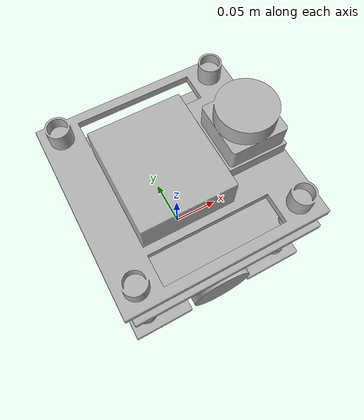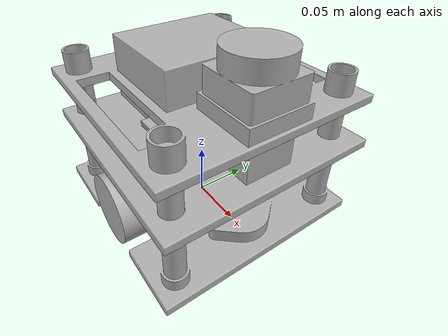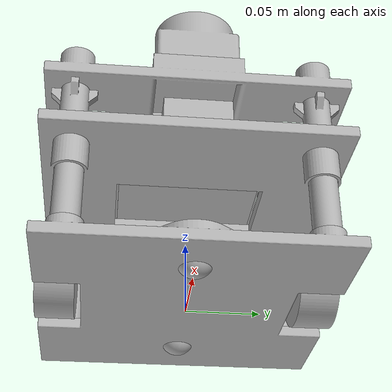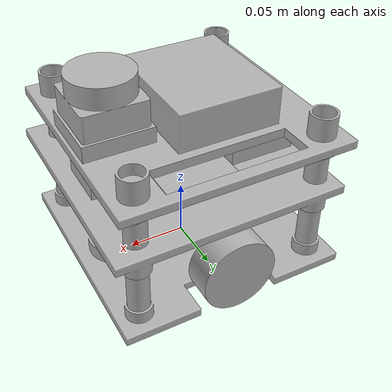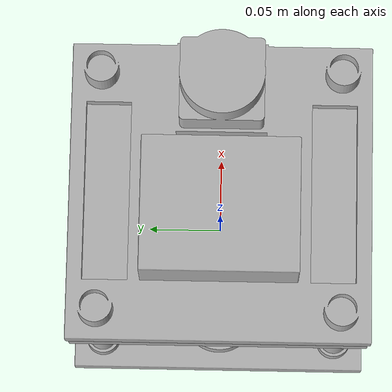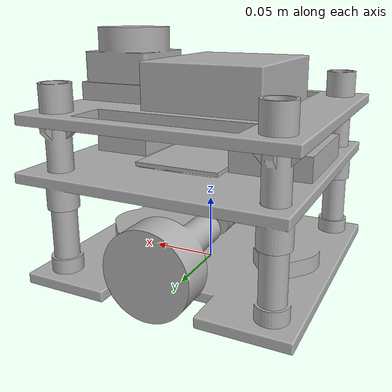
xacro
<?xml version="1.0" ?>
<robot name="aircore" xmlns:xacro="http://www.ros.org/wiki/xacro">

<xacro:include filename="$(find aircore_description)/urdf/materials.xacro" />
<xacro:include filename="$(find aircore_description)/urdf/aircore.trans" />
<xacro:include filename="$(find aircore_description)/urdf/aircore.gazebo" />

<link name="base_link">
  <inertial>
    <origin xyz="0.0 0.0 0.0" rpy="0 0 0"/>
    <mass value="0.439225"/>
    <inertia ixx="0.0011138883819159162" iyy="0.0016599215740339746" izz="0.0027503826039219545" ixy="2.8249298632144927e-14" iyz="9.053609013843502e-08" ixz="8.451472135959193e-14"/>
  </inertial>
  <visual>
    <origin xyz="0.0 0.0 0.0" rpy="0 0 0"/>
    <geometry>
      <mesh filename="package://aircore_description/meshes/base_link.stl" scale="0.001 0.001 0.001"/>
    </geometry>
    <material name="silver"/>
  </visual>
  <collision>
    <origin xyz="0.0 0.0 0.0" rpy="0 0 0"/>
    <geometry>
      <mesh filename="package://aircore_description/meshes/base_link.stl" scale="0.001 0.001 0.001"/>
    </geometry>
  </collision>
</link>

<link name="floor_2">
  <inertial>
    <origin xyz="0.0 0.0 0.0" rpy="0 0 0"/>
    <mass value="0.34289"/>
    <inertia ixx="0.0013144445405535135" iyy="0.0013463373808168917" izz="0.002650699609140111" ixy="1.5330280903726815e-14" iyz="-2.161860466003418e-18" ixz="-1.1136072907003861e-06"/>
  </inertial>
  <visual>
    <origin xyz="-0.00491162 0.0 -0.07933877" rpy="0 0 0"/>
    <geometry>
      <mesh filename="package://aircore_description/meshes/floor_2.stl" scale="0.001 0.001 0.001"/>
    </geometry>
    <material name="silver"/>
  </visual>
  <collision>
    <origin xyz="-0.00491162 0.0 -0.07933877" rpy="0 0 0"/>
    <geometry>
      <mesh filename="package://aircore_description/meshes/floor_2.stl" scale="0.001 0.001 0.001"/>
    </geometry>
  </collision>
</link>

<joint name="floor_2_joint" type="fixed">
  <origin xyz="0.00491162 -0.0 0.07933877" rpy="0 0 0"/>
  <parent link="base_link"/>
  <child link="floor_2"/>
</joint>

<link name="floor_3">
  <inertial>
    <origin xyz="0.0 0.0 0.0" rpy="0 0 0"/>
    <mass value="0.293633"/>
    <inertia ixx="0.0009363160280724659" iyy="0.0012427366259646676" izz="0.0021596955477074225" ixy="-4.404300590613591e-06" iyz="-6.231179076946574e-07" ixz="-2.7979649296653862e-05"/>
  </inertial>
  <visual>
    <origin xyz="-0.00122918 -0.00019042 -0.12385555" rpy="0 0 0"/>
    <geometry>
      <mesh filename="package://aircore_description/meshes/floor_3.stl" scale="0.001 0.001 0.001"/>
    </geometry>
    <material name="silver"/>
  </visual>
  <collision>
    <origin xyz="-0.00122918 -0.00019042 -0.12385555" rpy="0 0 0"/>
    <geometry>
      <mesh filename="package://aircore_description/meshes/floor_3.stl" scale="0.001 0.001 0.001"/>
    </geometry>
  </collision>
</link>

<joint name="floor_3_joint" type="fixed">
  <origin xyz="0.00122918 0.00019042 0.12385555" rpy="0 0 0"/>
  <parent link="base_link"/>
  <child link="floor_3"/>
</joint>

<link name="left_wheel">
  <inertial>
    <origin xyz="0.0 0.0 0.0" rpy="0 0 0"/>
    <mass value="0.138598"/>
    <inertia ixx="0.00010788068295675424" iyy="5.8722558095222066e-05" izz="0.00010788055352398356" ixy="1.7105327287514536e-09" iyz="1.3410444249981083e-13" ixz="-8.017404192709363e-14"/>
  </inertial>
  <visual>
    <origin xyz="-3.1e-07 -0.07526258 -0.027" rpy="0 0 0"/>
    <geometry>
      <mesh filename="package://aircore_description/meshes/left_wheel.stl" scale="0.001 0.001 0.001"/>
    </geometry>
    <material name="silver"/>
  </visual>
  <collision>
    <origin xyz="0 0 0" rpy="1.5707963 0 0"/>
    <geometry>
      <cylinder radius="0.0325" length="0.02"/>
    </geometry>
  </collision>
</link>

<joint name="left_wheel_joint" type="continuous">
  <origin xyz="3.1e-07 0.07526258 0.027" rpy="0 0 0"/>
  <parent link="base_link"/>
  <child link="left_wheel"/>
  <axis xyz="0.0 1.0 0.0"/>
</joint>

<link name="right_wheel">
  <inertial>
    <origin xyz="0.0 0.0 0.0" rpy="0 0 0"/>
    <mass value="0.138616"/>
    <inertia ixx="0.00010789311783370145" iyy="5.87413260378758e-05" izz="0.00010789298840277623" ixy="-1.710727078253432e-09" iyz="-1.35034247245203e-13" ixz="5.515708205821283e-15"/>
  </inertial>
  <visual>
    <origin xyz="-3.1e-07 0.07526408 -0.027" rpy="0 0 0"/>
    <geometry>
      <mesh filename="package://aircore_description/meshes/right_wheel.stl" scale="0.001 0.001 0.001"/>
    </geometry>
    <material name="silver"/>
  </visual>
  <!-- left_wheel과 동일한 이유로 충돌체를 원기둥으로 근사, origin도 동일하게
       (0,0,0)으로 관절 원점에 중심을 맞춤. length=20mm인 이유는 left_wheel
       주석 참고(축/허브 vs 타이어 반지름 분석, README_NAV2.md 15-10절) -->
  <collision>
    <origin xyz="0 0 0" rpy="1.5707963 0 0"/>
    <geometry>
      <cylinder radius="0.0325" length="0.02"/>
    </geometry>
  </collision>
</link>

<joint name="right_wheel_joint" type="continuous">
  <origin xyz="3.1e-07 -0.07526408 0.027" rpy="0 0 0"/>
  <parent link="base_link"/>
  <child link="right_wheel"/>
  <axis xyz="0.0 1.0 0.0"/>
</joint>

<link name="left_support_wheel">
  <inertial>
    <origin xyz="0.0 0.0 0.0" rpy="0 0 0"/>
    <mass value="0.010127"/>
    <inertia ixx="6.322245674430599e-07" iyy="6.322318397108807e-07" izz="6.319996952651373e-07" ixy="2.90401658276096e-23" iyz="3.4712978958850727e-19" ixz="-1.5146842997637577e-20"/>
  </inertial>
  <visual>
    <origin xyz="0.06299994 -0.0 -0.007" rpy="0 0 0"/>
    <geometry>
      <mesh filename="package://aircore_description/meshes/left_support_wheel.stl" scale="0.001 0.001 0.001"/>
    </geometry>
    <material name="silver"/>
  </visual>
  <collision>
    <origin xyz="0 0 0" rpy="0 0 0"/>
    <geometry>
      <sphere radius="0.0125"/>
    </geometry>
  </collision>
</link>

<joint name="left_support_wheel_joint" type="fixed">
  <origin xyz="-0.06299994 0.0 0.007" rpy="0 0 0"/>
  <parent link="base_link"/>
  <child link="left_support_wheel"/>
</joint>

<link name="right_support_wheel">
  <inertial>
    <origin xyz="0.0 0.0 0.0" rpy="0 0 0"/>
    <mass value="0.010127"/>
    <inertia ixx="6.322245611632108e-07" iyy="6.322318164671238e-07" izz="6.319996692839877e-07" ixy="-1.240550773218274e-23" iyz="-1.9337618050485616e-18" ixz="-1.5343075574492104e-20"/>
  </inertial>
  <visual>
    <origin xyz="-0.06300006 -0.0 -0.007" rpy="0 0 0"/>
    <geometry>
      <mesh filename="package://aircore_description/meshes/right_support_wheel.stl" scale="0.001 0.001 0.001"/>
    </geometry>
    <material name="silver"/>
  </visual>
  <!-- left_support_wheel과 동일한 이유로 볼캐스터 충돌체를 구(sphere)로
       근사, origin도 동일하게 (0,0,0)으로 관절 원점에 중심을 맞춤 -->
  <collision>
    <origin xyz="0 0 0" rpy="0 0 0"/>
    <geometry>
      <sphere radius="0.0125"/>
    </geometry>
  </collision>
</link>

<joint name="right_support_wheel_joint" type="fixed">
  <origin xyz="0.06300006 0.0 0.007" rpy="0 0 0"/>
  <parent link="base_link"/>
  <child link="right_support_wheel"/>
</joint>

<link name="battery">
  <inertial>
    <origin xyz="0.0 0.0 0.0" rpy="0 0 0"/>
    <mass value="0.3"/>
    <inertia ixx="0.00014872499999999997" iyy="9.809999999999999e-05" izz="0.00023062499999999998" ixy="0.0" iyz="0.0" ixz="0.0"/>
  </inertial>
  <visual>
    <origin xyz="0.05947 0.00304435 -0.093" rpy="0 0 0"/>
    <geometry>
      <mesh filename="package://aircore_description/meshes/battery.stl" scale="0.001 0.001 0.001"/>
    </geometry>
    <material name="silver"/>
  </visual>
  <collision>
    <origin xyz="0.05947 0.00304435 -0.093" rpy="0 0 0"/>
    <geometry>
      <mesh filename="package://aircore_description/meshes/battery.stl" scale="0.001 0.001 0.001"/>
    </geometry>
  </collision>
</link>

<joint name="battery_joint" type="fixed">
  <origin xyz="-0.05947 -0.00304435 0.093" rpy="0 0 0"/>
  <parent link="base_link"/>
  <child link="battery"/>
</joint>

<link name="driver">
  <inertial>
    <origin xyz="0.0 0.0 0.0" rpy="0 0 0"/>
    <mass value="0.05"/>
    <inertia ixx="1.1041666666666666e-05" iyy="1.1041666666666666e-05" izz="1.6875e-05" ixy="0.0" iyz="0.0" ixz="0.0"/>
  </inertial>
  <visual>
    <origin xyz="-0.06800061 -0.0 -0.0965" rpy="0 0 0"/>
    <geometry>
      <mesh filename="package://aircore_description/meshes/driver.stl" scale="0.001 0.001 0.001"/>
    </geometry>
    <material name="silver"/>
  </visual>
  <collision>
    <origin xyz="-0.06800061 -0.0 -0.0965" rpy="0 0 0"/>
    <geometry>
      <mesh filename="package://aircore_description/meshes/driver.stl" scale="0.001 0.001 0.001"/>
    </geometry>
  </collision>
</link>

<joint name="driver_joint" type="fixed">
  <origin xyz="0.06800061 0.0 0.0965" rpy="0 0 0"/>
  <parent link="base_link"/>
  <child link="driver"/>
</joint>

<link name="stmf407">
  <inertial>
    <origin xyz="0.0 0.0 0.0" rpy="0 0 0"/>
    <mass value="0.03"/>
    <inertia ixx="2.3545000000000002e-05" iyy="1.0912500000000003e-05" izz="3.44125e-05" ixy="0.0" iyz="0.0" ixz="0.0"/>
  </inertial>
  <visual>
    <origin xyz="-0.005 -0.0 -0.0855" rpy="0 0 0"/>
    <geometry>
      <mesh filename="package://aircore_description/meshes/stmf407.stl" scale="0.001 0.001 0.001"/>
    </geometry>
    <material name="silver"/>
  </visual>
  <collision>
    <origin xyz="-0.005 -0.0 -0.0855" rpy="0 0 0"/>
    <geometry>
      <mesh filename="package://aircore_description/meshes/stmf407.stl" scale="0.001 0.001 0.001"/>
    </geometry>
  </collision>
</link>

<joint name="stmf407_joint" type="fixed">
  <origin xyz="0.005 0.0 0.0855" rpy="0 0 0"/>
  <parent link="base_link"/>
  <child link="stmf407"/>
</joint>

<link name="jetson_nano">
  <inertial>
    <origin xyz="0.0 0.0 0.0" rpy="0 0 0"/>
    <mass value="0.24"/>
    <inertia ixx="0.0002437" iyy="0.00018938" izz="0.00037831999999999997" ixy="0.0" iyz="0.0" ixz="0.0"/>
  </inertial>
  <visual>
    <origin xyz="0.015 0.0 -0.14149546" rpy="0 0 0"/>
    <geometry>
      <mesh filename="package://aircore_description/meshes/jetson_nano.stl" scale="0.001 0.001 0.001"/>
    </geometry>
    <material name="silver"/>
  </visual>
  <collision>
    <origin xyz="0.015 0.0 -0.14149546" rpy="0 0 0"/>
    <geometry>
      <mesh filename="package://aircore_description/meshes/jetson_nano.stl" scale="0.001 0.001 0.001"/>
    </geometry>
  </collision>
</link>

<joint name="jetson_nano_joint" type="fixed">
  <origin xyz="-0.015 -0.0 0.14149546" rpy="0 0 0"/>
  <parent link="base_link"/>
  <child link="jetson_nano"/>
</joint>

<link name="lidar">
  <inertial>
    <origin xyz="0.0 0.0 0.0" rpy="0 0 0"/>
    <mass value="0.11"/>
    <inertia ixx="4.397295833333334e-05" iyy="4.397295833333334e-05" izz="5.667493333333334e-05" ixy="0.0" iyz="0.0" ixz="0.0"/>
  </inertial>
  <visual>
    <origin xyz="-0.06719964 0.0 -0.15945335" rpy="0 0 0"/>
    <geometry>
      <mesh filename="package://aircore_description/meshes/lidar.stl" scale="0.001 0.001 0.001"/>
    </geometry>
    <material name="silver"/>
  </visual>
  <collision>
    <origin xyz="-0.06719964 0.0 -0.15945335" rpy="0 0 0"/>
    <geometry>
      <mesh filename="package://aircore_description/meshes/lidar.stl" scale="0.001 0.001 0.001"/>
    </geometry>
  </collision>
</link>

<joint name="lidar_joint" type="fixed">
  <origin xyz="0.06719964 -0.0 0.15945335" rpy="0 0 0"/>
  <parent link="base_link"/>
  <child link="lidar"/>
</joint>

<link name="support_1_1">
  <inertial>
    <origin xyz="0.0 0.0 0.0" rpy="0 0 0"/>
    <mass value="0.01997"/>
    <inertia ixx="6.417418198668907e-06" iyy="6.417418129366872e-06" izz="8.530732737648661e-07" ixy="-2.706656232476234e-23" iyz="-1.8044374883174896e-23" ixz="4.511093720793724e-24"/>
  </inertial>
  <visual>
    <origin xyz="0.08 -0.08 -0.038" rpy="0 0 0"/>
    <geometry>
      <mesh filename="package://aircore_description/meshes/support_1_1.stl" scale="0.001 0.001 0.001"/>
    </geometry>
    <material name="silver"/>
  </visual>
  <collision>
    <origin xyz="0.08 -0.08 -0.038" rpy="0 0 0"/>
    <geometry>
      <mesh filename="package://aircore_description/meshes/support_1_1.stl" scale="0.001 0.001 0.001"/>
    </geometry>
  </collision>
</link>

<joint name="support_1_1_joint" type="fixed">
  <origin xyz="-0.08 0.08 0.038" rpy="0 0 0"/>
  <parent link="base_link"/>
  <child link="support_1_1"/>
</joint>

<link name="support_2_1">
  <inertial>
    <origin xyz="0.0 0.0 0.0" rpy="0 0 0"/>
    <mass value="0.020989"/>
    <inertia ixx="6.658761187281973e-06" iyy="6.657193425108008e-06" izz="9.966525112693481e-07" ixy="-4.510125281198925e-12" iyz="-4.451537368229161e-09" ixz="-5.7336454030917375e-11"/>
  </inertial>
  <visual>
    <origin xyz="0.07999979 -0.08001719 -0.10163285" rpy="0 0 0"/>
    <geometry>
      <mesh filename="package://aircore_description/meshes/support_2_1.stl" scale="0.001 0.001 0.001"/>
    </geometry>
    <material name="silver"/>
  </visual>
  <collision>
    <origin xyz="0.07999979 -0.08001719 -0.10163285" rpy="0 0 0"/>
    <geometry>
      <mesh filename="package://aircore_description/meshes/support_2_1.stl" scale="0.001 0.001 0.001"/>
    </geometry>
  </collision>
</link>

<joint name="support_2_1_joint" type="fixed">
  <origin xyz="-0.07999979 0.08001719 0.10163285" rpy="0 0 0"/>
  <parent link="base_link"/>
  <child link="support_2_1"/>
</joint>

<link name="support_1_2">
  <inertial>
    <origin xyz="0.0 0.0 0.0" rpy="0 0 0"/>
    <mass value="0.01997"/>
    <inertia ixx="6.417418198668907e-06" iyy="6.417418129366872e-06" izz="8.530732737648661e-07" ixy="2.255546860396862e-23" iyz="-1.8044374883174896e-23" ixz="4.511093720793724e-24"/>
  </inertial>
  <visual>
    <origin xyz="-0.08 -0.08 -0.038" rpy="0 0 0"/>
    <geometry>
      <mesh filename="package://aircore_description/meshes/support_1_2.stl" scale="0.001 0.001 0.001"/>
    </geometry>
    <material name="silver"/>
  </visual>
  <collision>
    <origin xyz="-0.08 -0.08 -0.038" rpy="0 0 0"/>
    <geometry>
      <mesh filename="package://aircore_description/meshes/support_1_2.stl" scale="0.001 0.001 0.001"/>
    </geometry>
  </collision>
</link>

<joint name="support_1_2_joint" type="fixed">
  <origin xyz="0.08 0.08 0.038" rpy="0 0 0"/>
  <parent link="base_link"/>
  <child link="support_1_2"/>
</joint>

<link name="support_2_2">
  <inertial>
    <origin xyz="0.0 0.0 0.0" rpy="0 0 0"/>
    <mass value="0.020989"/>
    <inertia ixx="6.658761187281973e-06" iyy="6.657193425108008e-06" izz="9.966525112693481e-07" ixy="4.510125281197797e-12" iyz="-4.451537368229233e-09" ixz="5.733645403089933e-11"/>
  </inertial>
  <visual>
    <origin xyz="-0.07999979 -0.08001719 -0.10163285" rpy="0 0 0"/>
    <geometry>
      <mesh filename="package://aircore_description/meshes/support_2_2.stl" scale="0.001 0.001 0.001"/>
    </geometry>
    <material name="silver"/>
  </visual>
  <collision>
    <origin xyz="-0.07999979 -0.08001719 -0.10163285" rpy="0 0 0"/>
    <geometry>
      <mesh filename="package://aircore_description/meshes/support_2_2.stl" scale="0.001 0.001 0.001"/>
    </geometry>
  </collision>
</link>

<joint name="support_2_2_joint" type="fixed">
  <origin xyz="0.07999979 0.08001719 0.10163285" rpy="0 0 0"/>
  <parent link="base_link"/>
  <child link="support_2_2"/>
</joint>

<link name="support_1_3">
  <inertial>
    <origin xyz="0.0 0.0 0.0" rpy="0 0 0"/>
    <mass value="0.01997"/>
    <inertia ixx="6.417418198668907e-06" iyy="6.417418129366872e-06" izz="8.530732737648661e-07" ixy="2.255546860396862e-23" iyz="1.8044374883174896e-23" ixz="-4.511093720793724e-24"/>
  </inertial>
  <visual>
    <origin xyz="0.08 0.08 -0.038" rpy="0 0 0"/>
    <geometry>
      <mesh filename="package://aircore_description/meshes/support_1_3.stl" scale="0.001 0.001 0.001"/>
    </geometry>
    <material name="silver"/>
  </visual>
  <collision>
    <origin xyz="0.08 0.08 -0.038" rpy="0 0 0"/>
    <geometry>
      <mesh filename="package://aircore_description/meshes/support_1_3.stl" scale="0.001 0.001 0.001"/>
    </geometry>
  </collision>
</link>

<joint name="support_1_3_joint" type="fixed">
  <origin xyz="-0.08 -0.08 0.038" rpy="0 0 0"/>
  <parent link="base_link"/>
  <child link="support_1_3"/>
</joint>

<link name="support_2_3">
  <inertial>
    <origin xyz="0.0 0.0 0.0" rpy="0 0 0"/>
    <mass value="0.020989"/>
    <inertia ixx="6.658761187281973e-06" iyy="6.657193425108008e-06" izz="9.966525112693481e-07" ixy="4.510125281197797e-12" iyz="4.451537368229233e-09" ixz="-5.733645403089933e-11"/>
  </inertial>
  <visual>
    <origin xyz="0.07999979 0.08001719 -0.10163285" rpy="0 0 0"/>
    <geometry>
      <mesh filename="package://aircore_description/meshes/support_2_3.stl" scale="0.001 0.001 0.001"/>
    </geometry>
    <material name="silver"/>
  </visual>
  <collision>
    <origin xyz="0.07999979 0.08001719 -0.10163285" rpy="0 0 0"/>
    <geometry>
      <mesh filename="package://aircore_description/meshes/support_2_3.stl" scale="0.001 0.001 0.001"/>
    </geometry>
  </collision>
</link>

<joint name="support_2_3_joint" type="fixed">
  <origin xyz="-0.07999979 -0.08001719 0.10163285" rpy="0 0 0"/>
  <parent link="base_link"/>
  <child link="support_2_3"/>
</joint>

<link name="support_1_4">
  <inertial>
    <origin xyz="0.0 0.0 0.0" rpy="0 0 0"/>
    <mass value="0.01997"/>
    <inertia ixx="6.417418198668907e-06" iyy="6.417418129366872e-06" izz="8.530732737648661e-07" ixy="-2.706656232476234e-23" iyz="1.8044374883174896e-23" ixz="-4.511093720793724e-24"/>
  </inertial>
  <visual>
    <origin xyz="-0.08 0.08 -0.038" rpy="0 0 0"/>
    <geometry>
      <mesh filename="package://aircore_description/meshes/support_1_4.stl" scale="0.001 0.001 0.001"/>
    </geometry>
    <material name="silver"/>
  </visual>
  <collision>
    <origin xyz="-0.08 0.08 -0.038" rpy="0 0 0"/>
    <geometry>
      <mesh filename="package://aircore_description/meshes/support_1_4.stl" scale="0.001 0.001 0.001"/>
    </geometry>
  </collision>
</link>

<joint name="support_1_4_joint" type="fixed">
  <origin xyz="0.08 -0.08 0.038" rpy="0 0 0"/>
  <parent link="base_link"/>
  <child link="support_1_4"/>
</joint>

<link name="support_2_4">
  <inertial>
    <origin xyz="0.0 0.0 0.0" rpy="0 0 0"/>
    <mass value="0.020989"/>
    <inertia ixx="6.658761187281973e-06" iyy="6.657193425108008e-06" izz="9.966525112693481e-07" ixy="-4.510125281198925e-12" iyz="4.451537368229161e-09" ixz="5.7336454030917375e-11"/>
  </inertial>
  <visual>
    <origin xyz="-0.07999979 0.08001719 -0.10163285" rpy="0 0 0"/>
    <geometry>
      <mesh filename="package://aircore_description/meshes/support_2_4.stl" scale="0.001 0.001 0.001"/>
    </geometry>
    <material name="silver"/>
  </visual>
  <collision>
    <origin xyz="-0.07999979 0.08001719 -0.10163285" rpy="0 0 0"/>
    <geometry>
      <mesh filename="package://aircore_description/meshes/support_2_4.stl" scale="0.001 0.001 0.001"/>
    </geometry>
  </collision>
</link>

<joint name="support_2_4_joint" type="fixed">
  <origin xyz="0.07999979 -0.08001719 0.10163285" rpy="0 0 0"/>
  <parent link="base_link"/>
  <child link="support_2_4"/>
</joint>

</robot>

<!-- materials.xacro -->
<robot name="aircore" xmlns:xacro="http://www.ros.org/wiki/xacro" >

<material name="silver">
  <color rgba="0.700 0.700 0.700 1.000"/>
</material>

</robot>

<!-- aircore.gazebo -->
<robot name="aircore" xmlns:xacro="http://www.ros.org/wiki/xacro" >

<xacro:property name="body_color" value="Gazebo/Silver" />

<gazebo reference="base_link">
  <material>${body_color}</material>
  <mu1>0.2</mu1><mu2>0.2</mu2><selfCollide>false</selfCollide><gravity>true</gravity>
</gazebo>

<gazebo reference="floor_2">
  <material>${body_color}</material>
  <mu1>0.2</mu1><mu2>0.2</mu2>
  <selfCollide>false</selfCollide>
</gazebo>

<gazebo reference="floor_3">
  <material>${body_color}</material>
  <mu1>0.2</mu1><mu2>0.2</mu2>
  <selfCollide>false</selfCollide>
</gazebo>

<gazebo reference="left_wheel">
  <material>${body_color}</material>
  <mu1>1.0</mu1><mu2>1.0</mu2>
  <selfCollide>false</selfCollide>
</gazebo>

<gazebo reference="right_wheel">
  <material>${body_color}</material>
  <mu1>1.0</mu1><mu2>1.0</mu2>
  <selfCollide>false</selfCollide>
</gazebo>

<gazebo reference="left_support_wheel">
  <material>${body_color}</material>
  <mu1>0.01</mu1><mu2>0.01</mu2>
  <selfCollide>false</selfCollide>
</gazebo>

<gazebo reference="right_support_wheel">
  <material>${body_color}</material>
  <mu1>0.01</mu1><mu2>0.01</mu2>
  <selfCollide>false</selfCollide>
</gazebo>

<gazebo reference="battery">
  <material>${body_color}</material>
  <mu1>0.2</mu1><mu2>0.2</mu2>
  <selfCollide>false</selfCollide>
</gazebo>

<gazebo reference="driver">
  <material>${body_color}</material>
  <mu1>0.2</mu1><mu2>0.2</mu2>
  <selfCollide>false</selfCollide>
</gazebo>

<gazebo reference="stmf407">
  <material>${body_color}</material>
  <mu1>0.2</mu1><mu2>0.2</mu2>
  <selfCollide>false</selfCollide>
</gazebo>

<gazebo reference="jetson_nano">
  <material>${body_color}</material>
  <mu1>0.2</mu1><mu2>0.2</mu2>
  <selfCollide>false</selfCollide>
</gazebo>

<gazebo reference="lidar">
  <material>${body_color}</material>
  <mu1>0.2</mu1><mu2>0.2</mu2>
  <selfCollide>false</selfCollide>
</gazebo>

<gazebo reference="support_1_1">
  <material>${body_color}</material>
  <mu1>0.2</mu1><mu2>0.2</mu2>
  <selfCollide>false</selfCollide>
</gazebo>

<gazebo reference="support_2_1">
  <material>${body_color}</material>
  <mu1>0.2</mu1><mu2>0.2</mu2>
  <selfCollide>false</selfCollide>
</gazebo>

<gazebo reference="support_1_2">
  <material>${body_color}</material>
  <mu1>0.2</mu1><mu2>0.2</mu2>
  <selfCollide>false</selfCollide>
</gazebo>

<gazebo reference="support_2_2">
  <material>${body_color}</material>
  <mu1>0.2</mu1><mu2>0.2</mu2>
  <selfCollide>false</selfCollide>
</gazebo>

<gazebo reference="support_1_3">
  <material>${body_color}</material>
  <mu1>0.2</mu1><mu2>0.2</mu2>
  <selfCollide>false</selfCollide>
</gazebo>

<gazebo reference="support_2_3">
  <material>${body_color}</material>
  <mu1>0.2</mu1><mu2>0.2</mu2>
  <selfCollide>false</selfCollide>
</gazebo>

<gazebo reference="support_1_4">
  <material>${body_color}</material>
  <mu1>0.2</mu1><mu2>0.2</mu2>
  <selfCollide>false</selfCollide>
</gazebo>

<gazebo reference="support_2_4">
  <material>${body_color}</material>
  <mu1>0.2</mu1><mu2>0.2</mu2>
  <selfCollide>false</selfCollide>
</gazebo>

<gazebo reference="lidar">
  <sensor name="lidar_sensor" type="gpu_lidar">
    <!-- z=0.015: 라이다 하우징 중심(z=0)에 두면 바로 아래 jetson_nano 상단이
         스캔 평면에 걸려서 좌/우가 항상 ~0.05m로 자기 자신을 감지함.
         스캔 원점만 위로 살짝 올려서 회피 -->
    <pose>0 0 0.015 0 0 0</pose>
    <gz_frame_id>lidar</gz_frame_id>
    <topic>/scan</topic>
    <visualize>true</visualize>
    <always_on>true</always_on>
    <!-- GPU 가속 없는 환경에서 ogre2로 매 스캔마다 500포인트를 렌더링하는
         비용이 RTF를 떨어뜨리는 주요 원인 중 하나라 240포인트/5Hz로 낮춤
         (slam_toolbox 매핑엔 이 정도 해상도/주기로 충분함) -->
    <update_rate>5</update_rate>
    <lidar>
      <scan>
        <horizontal>
          <samples>240</samples>
          <resolution>1</resolution>
          <min_angle>-3.14159</min_angle>
          <max_angle>3.14159</max_angle>
        </horizontal>
      </scan>
      <range>
        <min>0.05</min>
        <max>12.0</max>
        <resolution>0.015</resolution>
      </range>
      <noise>
        <type>gaussian</type>
        <mean>0.0</mean>
        <stddev>0.01</stddev>
      </noise>
    </lidar>
  </sensor>
</gazebo>

<gazebo>
  <plugin filename="gz-sim-diff-drive-system" name="gz::sim::systems::DiffDrive">
    <left_joint>left_wheel_joint</left_joint>
    <right_joint>right_wheel_joint</right_joint>

    <wheel_separation>0.1505</wheel_separation>
    <!-- 0.0325: left_wheel.stl 바운딩박스로 실측한 반지름(휠 조인트 z=0.027,
         메시 바닥 z=-0.0055 -> 반지름 0.0325m). 기존 0.035는 실제보다 커서
         명령한 선속도보다 로봇이 더 느리게 움직이는 원인 중 하나였음 -->
    <wheel_radius>0.0325</wheel_radius>
    <max_linear_acceleration>1.0</max_linear_acceleration>
    <max_angular_acceleration>2.0</max_angular_acceleration>

    <topic>/cmd_vel</topic>
    <odom_topic>/odom</odom_topic>
    <tf_topic>/tf</tf_topic>
    <frame_id>odom</frame_id>
    <child_frame_id>base_link</child_frame_id>

    <odom_publish_frequency>30</odom_publish_frequency>
  </plugin>

  <plugin filename="gz-sim-joint-state-publisher-system" name="gz::sim::systems::JointStatePublisher">
    <topic>/joint_states</topic>
  </plugin>
</gazebo>
</robot>
